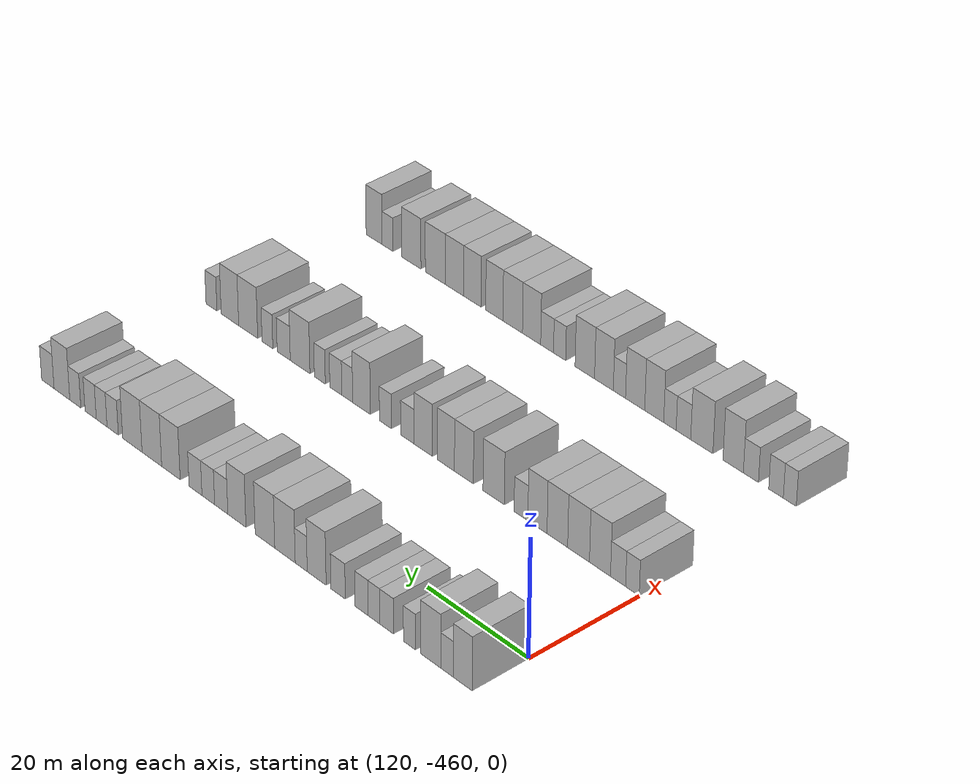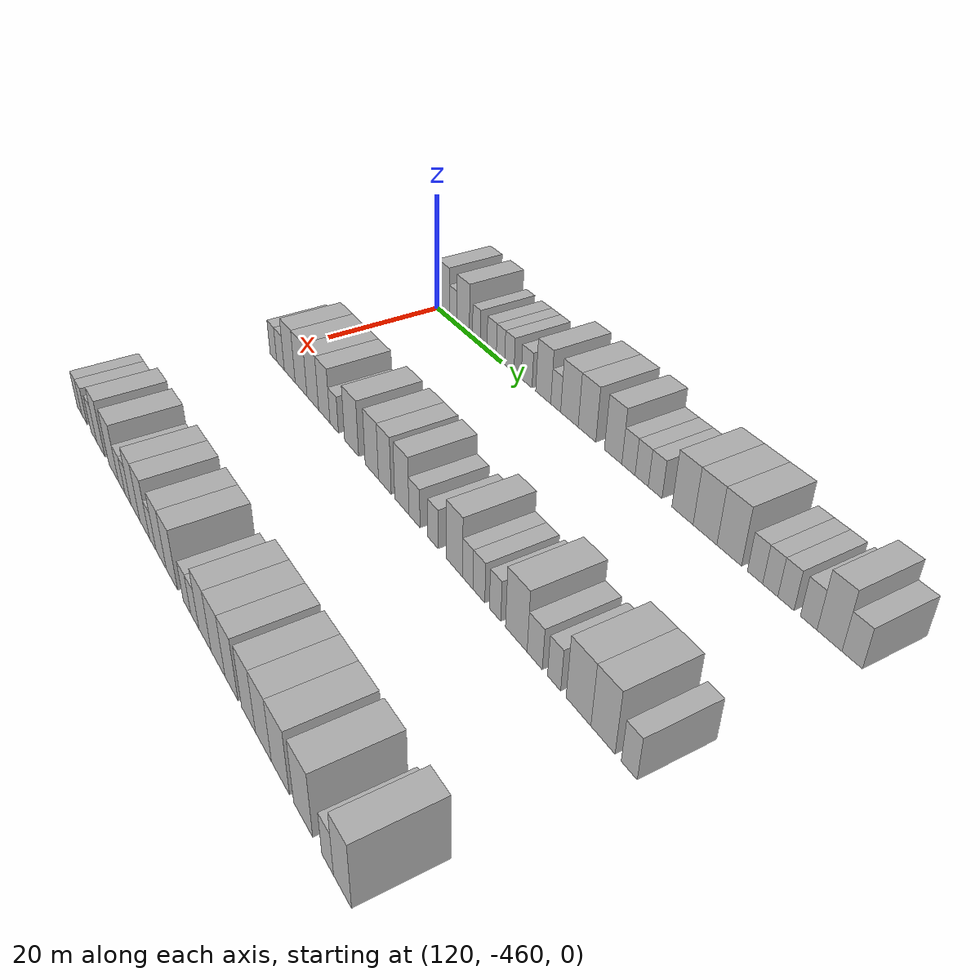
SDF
<sdf version="1.6">
 <world name="default">
  <model name="building_679">
   <static>1</static>
   <pose>115.0000 -458.1440 0 0.000000 0.000000 0.000000</pose>
   <link name="link">
    <pose>0 0 4.50 0 0 0</pose>
    <collision name="collision"><geometry><box><size>10.0000 3.7120 9.0000</size></box></geometry></collision>
    <visual name="visual">
     <cast_shadows>0</cast_shadows>
     <geometry><box><size>10.0000 3.7120 9.0000</size></box></geometry>
     <material>
      <script>
       <uri>model://HANNAS_wall/materials/scripts</uri>
       <uri>model://HANNAS_wall/materials/textures</uri>
       <name>vrc/HANNAS_wall</name>
      </script>
     </material>
    </visual>
   </link>
  </model>
  <model name="building_680">
   <static>1</static>
   <pose>115.0000 -455.0526 0 0.000000 0.000000 0.000000</pose>
   <link name="link">
    <pose>0 0 3.00 0 0 0</pose>
    <collision name="collision"><geometry><box><size>10.0000 2.4708 6.0000</size></box></geometry></collision>
    <visual name="visual">
     <cast_shadows>0</cast_shadows>
     <geometry><box><size>10.0000 2.4708 6.0000</size></box></geometry>
     <material>
      <script>
       <uri>model://HANNAS_wall/materials/scripts</uri>
       <uri>model://HANNAS_wall/materials/textures</uri>
       <name>vrc/HANNAS_wall</name>
      </script>
     </material>
    </visual>
   </link>
  </model>
  <model name="building_681">
   <static>1</static>
   <pose>115.0000 -451.8172 0 0.000000 0.000000 0.000000</pose>
   <link name="link">
    <pose>0 0 4.50 0 0 0</pose>
    <collision name="collision"><geometry><box><size>10.0000 3.9998 9.0000</size></box></geometry></collision>
    <visual name="visual">
     <cast_shadows>0</cast_shadows>
     <geometry><box><size>10.0000 3.9998 9.0000</size></box></geometry>
     <material>
      <script>
       <uri>model://HANNAS_wall/materials/scripts</uri>
       <uri>model://HANNAS_wall/materials/textures</uri>
       <name>vrc/HANNAS_wall</name>
      </script>
     </material>
    </visual>
   </link>
  </model>
  <model name="building_682">
   <static>1</static>
   <pose>115.0000 -447.6038 0 0.000000 0.000000 0.000000</pose>
   <link name="link">
    <pose>0 0 3.00 0 0 0</pose>
    <collision name="collision"><geometry><box><size>10.0000 2.4270 6.0000</size></box></geometry></collision>
    <visual name="visual">
     <cast_shadows>0</cast_shadows>
     <geometry><box><size>10.0000 2.4270 6.0000</size></box></geometry>
     <material>
      <script>
       <uri>model://HANNAS_wall/materials/scripts</uri>
       <uri>model://HANNAS_wall/materials/textures</uri>
       <name>vrc/HANNAS_wall</name>
      </script>
     </material>
    </visual>
   </link>
  </model>
  <model name="building_683">
   <static>1</static>
   <pose>115.0000 -443.0087 0 0.000000 0.000000 0.000000</pose>
   <link name="link">
    <pose>0 0 3.00 0 0 0</pose>
    <collision name="collision"><geometry><box><size>10.0000 2.7632 6.0000</size></box></geometry></collision>
    <visual name="visual">
     <cast_shadows>0</cast_shadows>
     <geometry><box><size>10.0000 2.7632 6.0000</size></box></geometry>
     <material>
      <script>
       <uri>model://HANNAS_wall/materials/scripts</uri>
       <uri>model://HANNAS_wall/materials/textures</uri>
       <name>vrc/HANNAS_wall</name>
      </script>
     </material>
    </visual>
   </link>
  </model>
  <model name="building_684">
   <static>1</static>
   <pose>115.0000 -440.4186 0 0.000000 0.000000 0.000000</pose>
   <link name="link">
    <pose>0 0 3.00 0 0 0</pose>
    <collision name="collision"><geometry><box><size>10.0000 2.4170 6.0000</size></box></geometry></collision>
    <visual name="visual">
     <cast_shadows>0</cast_shadows>
     <geometry><box><size>10.0000 2.4170 6.0000</size></box></geometry>
     <material>
      <script>
       <uri>model://HANNAS_wall/materials/scripts</uri>
       <uri>model://HANNAS_wall/materials/textures</uri>
       <name>vrc/HANNAS_wall</name>
      </script>
     </material>
    </visual>
   </link>
  </model>
  <model name="building_685">
   <static>1</static>
   <pose>115.0000 -437.8681 0 0.000000 0.000000 0.000000</pose>
   <link name="link">
    <pose>0 0 3.00 0 0 0</pose>
    <collision name="collision"><geometry><box><size>10.0000 2.6839 6.0000</size></box></geometry></collision>
    <visual name="visual">
     <cast_shadows>0</cast_shadows>
     <geometry><box><size>10.0000 2.6839 6.0000</size></box></geometry>
     <material>
      <script>
       <uri>model://HANNAS_wall/materials/scripts</uri>
       <uri>model://HANNAS_wall/materials/textures</uri>
       <name>vrc/HANNAS_wall</name>
      </script>
     </material>
    </visual>
   </link>
  </model>
  <model name="building_686">
   <static>1</static>
   <pose>115.0000 -433.0387 0 0.000000 0.000000 0.000000</pose>
   <link name="link">
    <pose>0 0 3.00 0 0 0</pose>
    <collision name="collision"><geometry><box><size>10.0000 2.9748 6.0000</size></box></geometry></collision>
    <visual name="visual">
     <cast_shadows>0</cast_shadows>
     <geometry><box><size>10.0000 2.9748 6.0000</size></box></geometry>
     <material>
      <script>
       <uri>model://HANNAS_wall/materials/scripts</uri>
       <uri>model://HANNAS_wall/materials/textures</uri>
       <name>vrc/HANNAS_wall</name>
      </script>
     </material>
    </visual>
   </link>
  </model>
  <model name="building_687">
   <static>1</static>
   <pose>115.0000 -428.5683 0 0.000000 0.000000 0.000000</pose>
   <link name="link">
    <pose>0 0 4.50 0 0 0</pose>
    <collision name="collision"><geometry><box><size>10.0000 3.9662 9.0000</size></box></geometry></collision>
    <visual name="visual">
     <cast_shadows>0</cast_shadows>
     <geometry><box><size>10.0000 3.9662 9.0000</size></box></geometry>
     <material>
      <script>
       <uri>model://HANNAS_wall/materials/scripts</uri>
       <uri>model://HANNAS_wall/materials/textures</uri>
       <name>vrc/HANNAS_wall</name>
      </script>
     </material>
    </visual>
   </link>
  </model>
  <model name="building_688">
   <static>1</static>
   <pose>115.0000 -425.3193 0 0.000000 0.000000 0.000000</pose>
   <link name="link">
    <pose>0 0 3.00 0 0 0</pose>
    <collision name="collision"><geometry><box><size>10.0000 2.5319 6.0000</size></box></geometry></collision>
    <visual name="visual">
     <cast_shadows>0</cast_shadows>
     <geometry><box><size>10.0000 2.5319 6.0000</size></box></geometry>
     <material>
      <script>
       <uri>model://HANNAS_wall/materials/scripts</uri>
       <uri>model://HANNAS_wall/materials/textures</uri>
       <name>vrc/HANNAS_wall</name>
      </script>
     </material>
    </visual>
   </link>
  </model>
  <model name="building_689">
   <static>1</static>
   <pose>115.0000 -421.8759 0 0.000000 0.000000 0.000000</pose>
   <link name="link">
    <pose>0 0 4.50 0 0 0</pose>
    <collision name="collision"><geometry><box><size>10.0000 4.3549 9.0000</size></box></geometry></collision>
    <visual name="visual">
     <cast_shadows>0</cast_shadows>
     <geometry><box><size>10.0000 4.3549 9.0000</size></box></geometry>
     <material>
      <script>
       <uri>model://HANNAS_wall/materials/scripts</uri>
       <uri>model://HANNAS_wall/materials/textures</uri>
       <name>vrc/HANNAS_wall</name>
      </script>
     </material>
    </visual>
   </link>
  </model>
  <model name="building_690">
   <static>1</static>
   <pose>115.0000 -417.5900 0 0.000000 0.000000 0.000000</pose>
   <link name="link">
    <pose>0 0 4.50 0 0 0</pose>
    <collision name="collision"><geometry><box><size>10.0000 4.2167 9.0000</size></box></geometry></collision>
    <visual name="visual">
     <cast_shadows>0</cast_shadows>
     <geometry><box><size>10.0000 4.2167 9.0000</size></box></geometry>
     <material>
      <script>
       <uri>model://HANNAS_wall/materials/scripts</uri>
       <uri>model://HANNAS_wall/materials/textures</uri>
       <name>vrc/HANNAS_wall</name>
      </script>
     </material>
    </visual>
   </link>
  </model>
  <model name="building_691">
   <static>1</static>
   <pose>115.0000 -411.5109 0 0.000000 0.000000 0.000000</pose>
   <link name="link">
    <pose>0 0 4.50 0 0 0</pose>
    <collision name="collision"><geometry><box><size>10.0000 3.9416 9.0000</size></box></geometry></collision>
    <visual name="visual">
     <cast_shadows>0</cast_shadows>
     <geometry><box><size>10.0000 3.9416 9.0000</size></box></geometry>
     <material>
      <script>
       <uri>model://HANNAS_wall/materials/scripts</uri>
       <uri>model://HANNAS_wall/materials/textures</uri>
       <name>vrc/HANNAS_wall</name>
      </script>
     </material>
    </visual>
   </link>
  </model>
  <model name="building_692">
   <static>1</static>
   <pose>115.0000 -408.0902 0 0.000000 0.000000 0.000000</pose>
   <link name="link">
    <pose>0 0 3.00 0 0 0</pose>
    <collision name="collision"><geometry><box><size>10.0000 2.8999 6.0000</size></box></geometry></collision>
    <visual name="visual">
     <cast_shadows>0</cast_shadows>
     <geometry><box><size>10.0000 2.8999 6.0000</size></box></geometry>
     <material>
      <script>
       <uri>model://HANNAS_wall/materials/scripts</uri>
       <uri>model://HANNAS_wall/materials/textures</uri>
       <name>vrc/HANNAS_wall</name>
      </script>
     </material>
    </visual>
   </link>
  </model>
  <model name="building_693">
   <static>1</static>
   <pose>115.0000 -405.2348 0 0.000000 0.000000 0.000000</pose>
   <link name="link">
    <pose>0 0 3.00 0 0 0</pose>
    <collision name="collision"><geometry><box><size>10.0000 2.8108 6.0000</size></box></geometry></collision>
    <visual name="visual">
     <cast_shadows>0</cast_shadows>
     <geometry><box><size>10.0000 2.8108 6.0000</size></box></geometry>
     <material>
      <script>
       <uri>model://HANNAS_wall/materials/scripts</uri>
       <uri>model://HANNAS_wall/materials/textures</uri>
       <name>vrc/HANNAS_wall</name>
      </script>
     </material>
    </visual>
   </link>
  </model>
  <model name="building_694">
   <static>1</static>
   <pose>115.0000 -402.4011 0 0.000000 0.000000 0.000000</pose>
   <link name="link">
    <pose>0 0 3.00 0 0 0</pose>
    <collision name="collision"><geometry><box><size>10.0000 2.8566 6.0000</size></box></geometry></collision>
    <visual name="visual">
     <cast_shadows>0</cast_shadows>
     <geometry><box><size>10.0000 2.8566 6.0000</size></box></geometry>
     <material>
      <script>
       <uri>model://HANNAS_wall/materials/scripts</uri>
       <uri>model://HANNAS_wall/materials/textures</uri>
       <name>vrc/HANNAS_wall</name>
      </script>
     </material>
    </visual>
   </link>
  </model>
  <model name="building_695">
   <static>1</static>
   <pose>115.0000 -396.8920 0 0.000000 0.000000 0.000000</pose>
   <link name="link">
    <pose>0 0 4.50 0 0 0</pose>
    <collision name="collision"><geometry><box><size>10.0000 4.1617 9.0000</size></box></geometry></collision>
    <visual name="visual">
     <cast_shadows>0</cast_shadows>
     <geometry><box><size>10.0000 4.1617 9.0000</size></box></geometry>
     <material>
      <script>
       <uri>model://HANNAS_wall/materials/scripts</uri>
       <uri>model://HANNAS_wall/materials/textures</uri>
       <name>vrc/HANNAS_wall</name>
      </script>
     </material>
    </visual>
   </link>
  </model>
  <model name="building_696">
   <static>1</static>
   <pose>115.0000 -392.5746 0 0.000000 0.000000 0.000000</pose>
   <link name="link">
    <pose>0 0 4.50 0 0 0</pose>
    <collision name="collision"><geometry><box><size>10.0000 4.4730 9.0000</size></box></geometry></collision>
    <visual name="visual">
     <cast_shadows>0</cast_shadows>
     <geometry><box><size>10.0000 4.4730 9.0000</size></box></geometry>
     <material>
      <script>
       <uri>model://HANNAS_wall/materials/scripts</uri>
       <uri>model://HANNAS_wall/materials/textures</uri>
       <name>vrc/HANNAS_wall</name>
      </script>
     </material>
    </visual>
   </link>
  </model>
  <model name="building_697">
   <static>1</static>
   <pose>115.0000 -388.1127 0 0.000000 0.000000 0.000000</pose>
   <link name="link">
    <pose>0 0 4.50 0 0 0</pose>
    <collision name="collision"><geometry><box><size>10.0000 4.4509 9.0000</size></box></geometry></collision>
    <visual name="visual">
     <cast_shadows>0</cast_shadows>
     <geometry><box><size>10.0000 4.4509 9.0000</size></box></geometry>
     <material>
      <script>
       <uri>model://HANNAS_wall/materials/scripts</uri>
       <uri>model://HANNAS_wall/materials/textures</uri>
       <name>vrc/HANNAS_wall</name>
      </script>
     </material>
    </visual>
   </link>
  </model>
  <model name="building_698">
   <static>1</static>
   <pose>115.0000 -383.5789 0 0.000000 0.000000 0.000000</pose>
   <link name="link">
    <pose>0 0 3.00 0 0 0</pose>
    <collision name="collision"><geometry><box><size>10.0000 2.6168 6.0000</size></box></geometry></collision>
    <visual name="visual">
     <cast_shadows>0</cast_shadows>
     <geometry><box><size>10.0000 2.6168 6.0000</size></box></geometry>
     <material>
      <script>
       <uri>model://HANNAS_wall/materials/scripts</uri>
       <uri>model://HANNAS_wall/materials/textures</uri>
       <name>vrc/HANNAS_wall</name>
      </script>
     </material>
    </visual>
   </link>
  </model>
  <model name="building_699">
   <static>1</static>
   <pose>115.0000 -381.0117 0 0.000000 0.000000 0.000000</pose>
   <link name="link">
    <pose>0 0 3.00 0 0 0</pose>
    <collision name="collision"><geometry><box><size>10.0000 2.5176 6.0000</size></box></geometry></collision>
    <visual name="visual">
     <cast_shadows>0</cast_shadows>
     <geometry><box><size>10.0000 2.5176 6.0000</size></box></geometry>
     <material>
      <script>
       <uri>model://HANNAS_wall/materials/scripts</uri>
       <uri>model://HANNAS_wall/materials/textures</uri>
       <name>vrc/HANNAS_wall</name>
      </script>
     </material>
    </visual>
   </link>
  </model>
  <model name="building_700">
   <static>1</static>
   <pose>115.0000 -378.4424 0 0.000000 0.000000 0.000000</pose>
   <link name="link">
    <pose>0 0 3.00 0 0 0</pose>
    <collision name="collision"><geometry><box><size>10.0000 2.6211 6.0000</size></box></geometry></collision>
    <visual name="visual">
     <cast_shadows>0</cast_shadows>
     <geometry><box><size>10.0000 2.6211 6.0000</size></box></geometry>
     <material>
      <script>
       <uri>model://HANNAS_wall/materials/scripts</uri>
       <uri>model://HANNAS_wall/materials/textures</uri>
       <name>vrc/HANNAS_wall</name>
      </script>
     </material>
    </visual>
   </link>
  </model>
  <model name="building_701">
   <static>1</static>
   <pose>115.0000 -374.8305 0 0.000000 0.000000 0.000000</pose>
   <link name="link">
    <pose>0 0 3.00 0 0 0</pose>
    <collision name="collision"><geometry><box><size>10.0000 2.6027 6.0000</size></box></geometry></collision>
    <visual name="visual">
     <cast_shadows>0</cast_shadows>
     <geometry><box><size>10.0000 2.6027 6.0000</size></box></geometry>
     <material>
      <script>
       <uri>model://HANNAS_wall/materials/scripts</uri>
       <uri>model://HANNAS_wall/materials/textures</uri>
       <name>vrc/HANNAS_wall</name>
      </script>
     </material>
    </visual>
   </link>
  </model>
  <model name="building_702">
   <static>1</static>
   <pose>115.0000 -371.6557 0 0.000000 0.000000 0.000000</pose>
   <link name="link">
    <pose>0 0 4.50 0 0 0</pose>
    <collision name="collision"><geometry><box><size>10.0000 3.7470 9.0000</size></box></geometry></collision>
    <visual name="visual">
     <cast_shadows>0</cast_shadows>
     <geometry><box><size>10.0000 3.7470 9.0000</size></box></geometry>
     <material>
      <script>
       <uri>model://HANNAS_wall/materials/scripts</uri>
       <uri>model://HANNAS_wall/materials/textures</uri>
       <name>vrc/HANNAS_wall</name>
      </script>
     </material>
    </visual>
   </link>
  </model>
  <model name="building_703">
   <static>1</static>
   <pose>115.0000 -368.2996 0 0.000000 0.000000 0.000000</pose>
   <link name="link">
    <pose>0 0 3.00 0 0 0</pose>
    <collision name="collision"><geometry><box><size>10.0000 2.9650 6.0000</size></box></geometry></collision>
    <visual name="visual">
     <cast_shadows>0</cast_shadows>
     <geometry><box><size>10.0000 2.9650 6.0000</size></box></geometry>
     <material>
      <script>
       <uri>model://HANNAS_wall/materials/scripts</uri>
       <uri>model://HANNAS_wall/materials/textures</uri>
       <name>vrc/HANNAS_wall</name>
      </script>
     </material>
    </visual>
   </link>
  </model>
  <model name="building_897">
   <static>1</static>
   <pose>145.0000 -458.6773 0 0.000000 0.000000 0.000000</pose>
   <link name="link">
    <pose>0 0 3.00 0 0 0</pose>
    <collision name="collision"><geometry><box><size>10.0000 2.6454 6.0000</size></box></geometry></collision>
    <visual name="visual">
     <cast_shadows>0</cast_shadows>
     <geometry><box><size>10.0000 2.6454 6.0000</size></box></geometry>
     <material>
      <script>
       <uri>model://HANNAS_wall/materials/scripts</uri>
       <uri>model://HANNAS_wall/materials/textures</uri>
       <name>vrc/HANNAS_wall</name>
      </script>
     </material>
    </visual>
   </link>
  </model>
  <model name="building_898">
   <static>1</static>
   <pose>145.0000 -455.8825 0 0.000000 0.000000 0.000000</pose>
   <link name="link">
    <pose>0 0 3.00 0 0 0</pose>
    <collision name="collision"><geometry><box><size>10.0000 2.9441 6.0000</size></box></geometry></collision>
    <visual name="visual">
     <cast_shadows>0</cast_shadows>
     <geometry><box><size>10.0000 2.9441 6.0000</size></box></geometry>
     <material>
      <script>
       <uri>model://HANNAS_wall/materials/scripts</uri>
       <uri>model://HANNAS_wall/materials/textures</uri>
       <name>vrc/HANNAS_wall</name>
      </script>
     </material>
    </visual>
   </link>
  </model>
  <model name="building_899">
   <static>1</static>
   <pose>145.0000 -452.3406 0 0.000000 0.000000 0.000000</pose>
   <link name="link">
    <pose>0 0 4.50 0 0 0</pose>
    <collision name="collision"><geometry><box><size>10.0000 4.1396 9.0000</size></box></geometry></collision>
    <visual name="visual">
     <cast_shadows>0</cast_shadows>
     <geometry><box><size>10.0000 4.1396 9.0000</size></box></geometry>
     <material>
      <script>
       <uri>model://HANNAS_wall/materials/scripts</uri>
       <uri>model://HANNAS_wall/materials/textures</uri>
       <name>vrc/HANNAS_wall</name>
      </script>
     </material>
    </visual>
   </link>
  </model>
  <model name="building_900">
   <static>1</static>
   <pose>145.0000 -448.1002 0 0.000000 0.000000 0.000000</pose>
   <link name="link">
    <pose>0 0 4.50 0 0 0</pose>
    <collision name="collision"><geometry><box><size>10.0000 4.3412 9.0000</size></box></geometry></collision>
    <visual name="visual">
     <cast_shadows>0</cast_shadows>
     <geometry><box><size>10.0000 4.3412 9.0000</size></box></geometry>
     <material>
      <script>
       <uri>model://HANNAS_wall/materials/scripts</uri>
       <uri>model://HANNAS_wall/materials/textures</uri>
       <name>vrc/HANNAS_wall</name>
      </script>
     </material>
    </visual>
   </link>
  </model>
  <model name="building_901">
   <static>1</static>
   <pose>145.0000 -443.8634 0 0.000000 0.000000 0.000000</pose>
   <link name="link">
    <pose>0 0 4.50 0 0 0</pose>
    <collision name="collision"><geometry><box><size>10.0000 4.1324 9.0000</size></box></geometry></collision>
    <visual name="visual">
     <cast_shadows>0</cast_shadows>
     <geometry><box><size>10.0000 4.1324 9.0000</size></box></geometry>
     <material>
      <script>
       <uri>model://HANNAS_wall/materials/scripts</uri>
       <uri>model://HANNAS_wall/materials/textures</uri>
       <name>vrc/HANNAS_wall</name>
      </script>
     </material>
    </visual>
   </link>
  </model>
  <model name="building_902">
   <static>1</static>
   <pose>145.0000 -439.8578 0 0.000000 0.000000 0.000000</pose>
   <link name="link">
    <pose>0 0 4.50 0 0 0</pose>
    <collision name="collision"><geometry><box><size>10.0000 3.8790 9.0000</size></box></geometry></collision>
    <visual name="visual">
     <cast_shadows>0</cast_shadows>
     <geometry><box><size>10.0000 3.8790 9.0000</size></box></geometry>
     <material>
      <script>
       <uri>model://HANNAS_wall/materials/scripts</uri>
       <uri>model://HANNAS_wall/materials/textures</uri>
       <name>vrc/HANNAS_wall</name>
      </script>
     </material>
    </visual>
   </link>
  </model>
  <model name="building_903">
   <static>1</static>
   <pose>145.0000 -436.5166 0 0.000000 0.000000 0.000000</pose>
   <link name="link">
    <pose>0 0 3.00 0 0 0</pose>
    <collision name="collision"><geometry><box><size>10.0000 2.8032 6.0000</size></box></geometry></collision>
    <visual name="visual">
     <cast_shadows>0</cast_shadows>
     <geometry><box><size>10.0000 2.8032 6.0000</size></box></geometry>
     <material>
      <script>
       <uri>model://HANNAS_wall/materials/scripts</uri>
       <uri>model://HANNAS_wall/materials/textures</uri>
       <name>vrc/HANNAS_wall</name>
      </script>
     </material>
    </visual>
   </link>
  </model>
  <model name="building_904">
   <static>1</static>
   <pose>145.0000 -430.9033 0 0.000000 0.000000 0.000000</pose>
   <link name="link">
    <pose>0 0 4.50 0 0 0</pose>
    <collision name="collision"><geometry><box><size>10.0000 4.4235 9.0000</size></box></geometry></collision>
    <visual name="visual">
     <cast_shadows>0</cast_shadows>
     <geometry><box><size>10.0000 4.4235 9.0000</size></box></geometry>
     <material>
      <script>
       <uri>model://HANNAS_wall/materials/scripts</uri>
       <uri>model://HANNAS_wall/materials/textures</uri>
       <name>vrc/HANNAS_wall</name>
      </script>
     </material>
    </visual>
   </link>
  </model>
  <model name="building_905">
   <static>1</static>
   <pose>145.0000 -424.7099 0 0.000000 0.000000 0.000000</pose>
   <link name="link">
    <pose>0 0 4.50 0 0 0</pose>
    <collision name="collision"><geometry><box><size>10.0000 3.9633 9.0000</size></box></geometry></collision>
    <visual name="visual">
     <cast_shadows>0</cast_shadows>
     <geometry><box><size>10.0000 3.9633 9.0000</size></box></geometry>
     <material>
      <script>
       <uri>model://HANNAS_wall/materials/scripts</uri>
       <uri>model://HANNAS_wall/materials/textures</uri>
       <name>vrc/HANNAS_wall</name>
      </script>
     </material>
    </visual>
   </link>
  </model>
  <model name="building_906">
   <static>1</static>
   <pose>145.0000 -420.9056 0 0.000000 0.000000 0.000000</pose>
   <link name="link">
    <pose>0 0 4.50 0 0 0</pose>
    <collision name="collision"><geometry><box><size>10.0000 3.6452 9.0000</size></box></geometry></collision>
    <visual name="visual">
     <cast_shadows>0</cast_shadows>
     <geometry><box><size>10.0000 3.6452 9.0000</size></box></geometry>
     <material>
      <script>
       <uri>model://HANNAS_wall/materials/scripts</uri>
       <uri>model://HANNAS_wall/materials/textures</uri>
       <name>vrc/HANNAS_wall</name>
      </script>
     </material>
    </visual>
   </link>
  </model>
  <model name="building_907">
   <static>1</static>
   <pose>145.0000 -416.1419 0 0.000000 0.000000 0.000000</pose>
   <link name="link">
    <pose>0 0 4.50 0 0 0</pose>
    <collision name="collision"><geometry><box><size>10.0000 3.8822 9.0000</size></box></geometry></collision>
    <visual name="visual">
     <cast_shadows>0</cast_shadows>
     <geometry><box><size>10.0000 3.8822 9.0000</size></box></geometry>
     <material>
      <script>
       <uri>model://HANNAS_wall/materials/scripts</uri>
       <uri>model://HANNAS_wall/materials/textures</uri>
       <name>vrc/HANNAS_wall</name>
      </script>
     </material>
    </visual>
   </link>
  </model>
  <model name="building_908">
   <static>1</static>
   <pose>145.0000 -412.7316 0 0.000000 0.000000 0.000000</pose>
   <link name="link">
    <pose>0 0 3.00 0 0 0</pose>
    <collision name="collision"><geometry><box><size>10.0000 2.9385 6.0000</size></box></geometry></collision>
    <visual name="visual">
     <cast_shadows>0</cast_shadows>
     <geometry><box><size>10.0000 2.9385 6.0000</size></box></geometry>
     <material>
      <script>
       <uri>model://HANNAS_wall/materials/scripts</uri>
       <uri>model://HANNAS_wall/materials/textures</uri>
       <name>vrc/HANNAS_wall</name>
      </script>
     </material>
    </visual>
   </link>
  </model>
  <model name="building_909">
   <static>1</static>
   <pose>145.0000 -407.9626 0 0.000000 0.000000 0.000000</pose>
   <link name="link">
    <pose>0 0 3.00 0 0 0</pose>
    <collision name="collision"><geometry><box><size>10.0000 2.5996 6.0000</size></box></geometry></collision>
    <visual name="visual">
     <cast_shadows>0</cast_shadows>
     <geometry><box><size>10.0000 2.5996 6.0000</size></box></geometry>
     <material>
      <script>
       <uri>model://HANNAS_wall/materials/scripts</uri>
       <uri>model://HANNAS_wall/materials/textures</uri>
       <name>vrc/HANNAS_wall</name>
      </script>
     </material>
    </visual>
   </link>
  </model>
  <model name="building_910">
   <static>1</static>
   <pose>145.0000 -402.7244 0 0.000000 0.000000 0.000000</pose>
   <link name="link">
    <pose>0 0 4.50 0 0 0</pose>
    <collision name="collision"><geometry><box><size>10.0000 3.8767 9.0000</size></box></geometry></collision>
    <visual name="visual">
     <cast_shadows>0</cast_shadows>
     <geometry><box><size>10.0000 3.8767 9.0000</size></box></geometry>
     <material>
      <script>
       <uri>model://HANNAS_wall/materials/scripts</uri>
       <uri>model://HANNAS_wall/materials/textures</uri>
       <name>vrc/HANNAS_wall</name>
      </script>
     </material>
    </visual>
   </link>
  </model>
  <model name="building_911">
   <static>1</static>
   <pose>145.0000 -399.5802 0 0.000000 0.000000 0.000000</pose>
   <link name="link">
    <pose>0 0 3.00 0 0 0</pose>
    <collision name="collision"><geometry><box><size>10.0000 2.4117 6.0000</size></box></geometry></collision>
    <visual name="visual">
     <cast_shadows>0</cast_shadows>
     <geometry><box><size>10.0000 2.4117 6.0000</size></box></geometry>
     <material>
      <script>
       <uri>model://HANNAS_wall/materials/scripts</uri>
       <uri>model://HANNAS_wall/materials/textures</uri>
       <name>vrc/HANNAS_wall</name>
      </script>
     </material>
    </visual>
   </link>
  </model>
  <model name="building_912">
   <static>1</static>
   <pose>145.0000 -397.0413 0 0.000000 0.000000 0.000000</pose>
   <link name="link">
    <pose>0 0 3.00 0 0 0</pose>
    <collision name="collision"><geometry><box><size>10.0000 2.6661 6.0000</size></box></geometry></collision>
    <visual name="visual">
     <cast_shadows>0</cast_shadows>
     <geometry><box><size>10.0000 2.6661 6.0000</size></box></geometry>
     <material>
      <script>
       <uri>model://HANNAS_wall/materials/scripts</uri>
       <uri>model://HANNAS_wall/materials/textures</uri>
       <name>vrc/HANNAS_wall</name>
      </script>
     </material>
    </visual>
   </link>
  </model>
  <model name="building_913">
   <static>1</static>
   <pose>145.0000 -393.4791 0 0.000000 0.000000 0.000000</pose>
   <link name="link">
    <pose>0 0 3.00 0 0 0</pose>
    <collision name="collision"><geometry><box><size>10.0000 2.4581 6.0000</size></box></geometry></collision>
    <visual name="visual">
     <cast_shadows>0</cast_shadows>
     <geometry><box><size>10.0000 2.4581 6.0000</size></box></geometry>
     <material>
      <script>
       <uri>model://HANNAS_wall/materials/scripts</uri>
       <uri>model://HANNAS_wall/materials/textures</uri>
       <name>vrc/HANNAS_wall</name>
      </script>
     </material>
    </visual>
   </link>
  </model>
  <model name="building_914">
   <static>1</static>
   <pose>145.0000 -389.0244 0 0.000000 0.000000 0.000000</pose>
   <link name="link">
    <pose>0 0 4.50 0 0 0</pose>
    <collision name="collision"><geometry><box><size>10.0000 4.4514 9.0000</size></box></geometry></collision>
    <visual name="visual">
     <cast_shadows>0</cast_shadows>
     <geometry><box><size>10.0000 4.4514 9.0000</size></box></geometry>
     <material>
      <script>
       <uri>model://HANNAS_wall/materials/scripts</uri>
       <uri>model://HANNAS_wall/materials/textures</uri>
       <name>vrc/HANNAS_wall</name>
      </script>
     </material>
    </visual>
   </link>
  </model>
  <model name="building_915">
   <static>1</static>
   <pose>145.0000 -385.3014 0 0.000000 0.000000 0.000000</pose>
   <link name="link">
    <pose>0 0 3.00 0 0 0</pose>
    <collision name="collision"><geometry><box><size>10.0000 2.9944 6.0000</size></box></geometry></collision>
    <visual name="visual">
     <cast_shadows>0</cast_shadows>
     <geometry><box><size>10.0000 2.9944 6.0000</size></box></geometry>
     <material>
      <script>
       <uri>model://HANNAS_wall/materials/scripts</uri>
       <uri>model://HANNAS_wall/materials/textures</uri>
       <name>vrc/HANNAS_wall</name>
      </script>
     </material>
    </visual>
   </link>
  </model>
  <model name="building_916">
   <static>1</static>
   <pose>145.0000 -381.5657 0 0.000000 0.000000 0.000000</pose>
   <link name="link">
    <pose>0 0 3.00 0 0 0</pose>
    <collision name="collision"><geometry><box><size>10.0000 2.4771 6.0000</size></box></geometry></collision>
    <visual name="visual">
     <cast_shadows>0</cast_shadows>
     <geometry><box><size>10.0000 2.4771 6.0000</size></box></geometry>
     <material>
      <script>
       <uri>model://HANNAS_wall/materials/scripts</uri>
       <uri>model://HANNAS_wall/materials/textures</uri>
       <name>vrc/HANNAS_wall</name>
      </script>
     </material>
    </visual>
   </link>
  </model>
  <model name="building_917">
   <static>1</static>
   <pose>145.0000 -377.1180 0 0.000000 0.000000 0.000000</pose>
   <link name="link">
    <pose>0 0 4.50 0 0 0</pose>
    <collision name="collision"><geometry><box><size>10.0000 4.4183 9.0000</size></box></geometry></collision>
    <visual name="visual">
     <cast_shadows>0</cast_shadows>
     <geometry><box><size>10.0000 4.4183 9.0000</size></box></geometry>
     <material>
      <script>
       <uri>model://HANNAS_wall/materials/scripts</uri>
       <uri>model://HANNAS_wall/materials/textures</uri>
       <name>vrc/HANNAS_wall</name>
      </script>
     </material>
    </visual>
   </link>
  </model>
  <model name="building_918">
   <static>1</static>
   <pose>145.0000 -372.8597 0 0.000000 0.000000 0.000000</pose>
   <link name="link">
    <pose>0 0 4.50 0 0 0</pose>
    <collision name="collision"><geometry><box><size>10.0000 4.0983 9.0000</size></box></geometry></collision>
    <visual name="visual">
     <cast_shadows>0</cast_shadows>
     <geometry><box><size>10.0000 4.0983 9.0000</size></box></geometry>
     <material>
      <script>
       <uri>model://HANNAS_wall/materials/scripts</uri>
       <uri>model://HANNAS_wall/materials/textures</uri>
       <name>vrc/HANNAS_wall</name>
      </script>
     </material>
    </visual>
   </link>
  </model>
  <model name="building_919">
   <static>1</static>
   <pose>145.0000 -368.5227 0 0.000000 0.000000 0.000000</pose>
   <link name="link">
    <pose>0 0 3.00 0 0 0</pose>
    <collision name="collision"><geometry><box><size>10.0000 2.5757 6.0000</size></box></geometry></collision>
    <visual name="visual">
     <cast_shadows>0</cast_shadows>
     <geometry><box><size>10.0000 2.5757 6.0000</size></box></geometry>
     <material>
      <script>
       <uri>model://HANNAS_wall/materials/scripts</uri>
       <uri>model://HANNAS_wall/materials/textures</uri>
       <name>vrc/HANNAS_wall</name>
      </script>
     </material>
    </visual>
   </link>
  </model>
  <model name="building_1127">
   <static>1</static>
   <pose>175.0000 -458.7492 0 0.000000 0.000000 0.000000</pose>
   <link name="link">
    <pose>0 0 3.00 0 0 0</pose>
    <collision name="collision"><geometry><box><size>10.0000 2.5017 6.0000</size></box></geometry></collision>
    <visual name="visual">
     <cast_shadows>0</cast_shadows>
     <geometry><box><size>10.0000 2.5017 6.0000</size></box></geometry>
     <material>
      <script>
       <uri>model://HANNAS_wall/materials/scripts</uri>
       <uri>model://HANNAS_wall/materials/textures</uri>
       <name>vrc/HANNAS_wall</name>
      </script>
     </material>
    </visual>
   </link>
  </model>
  <model name="building_1128">
   <static>1</static>
   <pose>175.0000 -456.0791 0 0.000000 0.000000 0.000000</pose>
   <link name="link">
    <pose>0 0 3.00 0 0 0</pose>
    <collision name="collision"><geometry><box><size>10.0000 2.8384 6.0000</size></box></geometry></collision>
    <visual name="visual">
     <cast_shadows>0</cast_shadows>
     <geometry><box><size>10.0000 2.8384 6.0000</size></box></geometry>
     <material>
      <script>
       <uri>model://HANNAS_wall/materials/scripts</uri>
       <uri>model://HANNAS_wall/materials/textures</uri>
       <name>vrc/HANNAS_wall</name>
      </script>
     </material>
    </visual>
   </link>
  </model>
  <model name="building_1129">
   <static>1</static>
   <pose>175.0000 -451.1783 0 0.000000 0.000000 0.000000</pose>
   <link name="link">
    <pose>0 0 3.00 0 0 0</pose>
    <collision name="collision"><geometry><box><size>10.0000 2.9633 6.0000</size></box></geometry></collision>
    <visual name="visual">
     <cast_shadows>0</cast_shadows>
     <geometry><box><size>10.0000 2.9633 6.0000</size></box></geometry>
     <material>
      <script>
       <uri>model://HANNAS_wall/materials/scripts</uri>
       <uri>model://HANNAS_wall/materials/textures</uri>
       <name>vrc/HANNAS_wall</name>
      </script>
     </material>
    </visual>
   </link>
  </model>
  <model name="building_1130">
   <static>1</static>
   <pose>175.0000 -447.6778 0 0.000000 0.000000 0.000000</pose>
   <link name="link">
    <pose>0 0 4.50 0 0 0</pose>
    <collision name="collision"><geometry><box><size>10.0000 4.0377 9.0000</size></box></geometry></collision>
    <visual name="visual">
     <cast_shadows>0</cast_shadows>
     <geometry><box><size>10.0000 4.0377 9.0000</size></box></geometry>
     <material>
      <script>
       <uri>model://HANNAS_wall/materials/scripts</uri>
       <uri>model://HANNAS_wall/materials/textures</uri>
       <name>vrc/HANNAS_wall</name>
      </script>
     </material>
    </visual>
   </link>
  </model>
  <model name="building_1131">
   <static>1</static>
   <pose>175.0000 -441.4262 0 0.000000 0.000000 0.000000</pose>
   <link name="link">
    <pose>0 0 4.50 0 0 0</pose>
    <collision name="collision"><geometry><box><size>10.0000 4.4655 9.0000</size></box></geometry></collision>
    <visual name="visual">
     <cast_shadows>0</cast_shadows>
     <geometry><box><size>10.0000 4.4655 9.0000</size></box></geometry>
     <material>
      <script>
       <uri>model://HANNAS_wall/materials/scripts</uri>
       <uri>model://HANNAS_wall/materials/textures</uri>
       <name>vrc/HANNAS_wall</name>
      </script>
     </material>
    </visual>
   </link>
  </model>
  <model name="building_1132">
   <static>1</static>
   <pose>175.0000 -437.7216 0 0.000000 0.000000 0.000000</pose>
   <link name="link">
    <pose>0 0 3.00 0 0 0</pose>
    <collision name="collision"><geometry><box><size>10.0000 2.9437 6.0000</size></box></geometry></collision>
    <visual name="visual">
     <cast_shadows>0</cast_shadows>
     <geometry><box><size>10.0000 2.9437 6.0000</size></box></geometry>
     <material>
      <script>
       <uri>model://HANNAS_wall/materials/scripts</uri>
       <uri>model://HANNAS_wall/materials/textures</uri>
       <name>vrc/HANNAS_wall</name>
      </script>
     </material>
    </visual>
   </link>
  </model>
  <model name="building_1133">
   <static>1</static>
   <pose>175.0000 -434.9835 0 0.000000 0.000000 0.000000</pose>
   <link name="link">
    <pose>0 0 3.00 0 0 0</pose>
    <collision name="collision"><geometry><box><size>10.0000 2.5327 6.0000</size></box></geometry></collision>
    <visual name="visual">
     <cast_shadows>0</cast_shadows>
     <geometry><box><size>10.0000 2.5327 6.0000</size></box></geometry>
     <material>
      <script>
       <uri>model://HANNAS_wall/materials/scripts</uri>
       <uri>model://HANNAS_wall/materials/textures</uri>
       <name>vrc/HANNAS_wall</name>
      </script>
     </material>
    </visual>
   </link>
  </model>
  <model name="building_1134">
   <static>1</static>
   <pose>175.0000 -431.7691 0 0.000000 0.000000 0.000000</pose>
   <link name="link">
    <pose>0 0 4.50 0 0 0</pose>
    <collision name="collision"><geometry><box><size>10.0000 3.8961 9.0000</size></box></geometry></collision>
    <visual name="visual">
     <cast_shadows>0</cast_shadows>
     <geometry><box><size>10.0000 3.8961 9.0000</size></box></geometry>
     <material>
      <script>
       <uri>model://HANNAS_wall/materials/scripts</uri>
       <uri>model://HANNAS_wall/materials/textures</uri>
       <name>vrc/HANNAS_wall</name>
      </script>
     </material>
    </visual>
   </link>
  </model>
  <model name="building_1135">
   <static>1</static>
   <pose>175.0000 -427.8384 0 0.000000 0.000000 0.000000</pose>
   <link name="link">
    <pose>0 0 4.50 0 0 0</pose>
    <collision name="collision"><geometry><box><size>10.0000 3.9652 9.0000</size></box></geometry></collision>
    <visual name="visual">
     <cast_shadows>0</cast_shadows>
     <geometry><box><size>10.0000 3.9652 9.0000</size></box></geometry>
     <material>
      <script>
       <uri>model://HANNAS_wall/materials/scripts</uri>
       <uri>model://HANNAS_wall/materials/textures</uri>
       <name>vrc/HANNAS_wall</name>
      </script>
     </material>
    </visual>
   </link>
  </model>
  <model name="building_1136">
   <static>1</static>
   <pose>175.0000 -424.5842 0 0.000000 0.000000 0.000000</pose>
   <link name="link">
    <pose>0 0 3.00 0 0 0</pose>
    <collision name="collision"><geometry><box><size>10.0000 2.5432 6.0000</size></box></geometry></collision>
    <visual name="visual">
     <cast_shadows>0</cast_shadows>
     <geometry><box><size>10.0000 2.5432 6.0000</size></box></geometry>
     <material>
      <script>
       <uri>model://HANNAS_wall/materials/scripts</uri>
       <uri>model://HANNAS_wall/materials/textures</uri>
       <name>vrc/HANNAS_wall</name>
      </script>
     </material>
    </visual>
   </link>
  </model>
  <model name="building_1137">
   <static>1</static>
   <pose>175.0000 -421.3475 0 0.000000 0.000000 0.000000</pose>
   <link name="link">
    <pose>0 0 4.50 0 0 0</pose>
    <collision name="collision"><geometry><box><size>10.0000 3.9301 9.0000</size></box></geometry></collision>
    <visual name="visual">
     <cast_shadows>0</cast_shadows>
     <geometry><box><size>10.0000 3.9301 9.0000</size></box></geometry>
     <material>
      <script>
       <uri>model://HANNAS_wall/materials/scripts</uri>
       <uri>model://HANNAS_wall/materials/textures</uri>
       <name>vrc/HANNAS_wall</name>
      </script>
     </material>
    </visual>
   </link>
  </model>
  <model name="building_1138">
   <static>1</static>
   <pose>175.0000 -417.3230 0 0.000000 0.000000 0.000000</pose>
   <link name="link">
    <pose>0 0 4.50 0 0 0</pose>
    <collision name="collision"><geometry><box><size>10.0000 4.1190 9.0000</size></box></geometry></collision>
    <visual name="visual">
     <cast_shadows>0</cast_shadows>
     <geometry><box><size>10.0000 4.1190 9.0000</size></box></geometry>
     <material>
      <script>
       <uri>model://HANNAS_wall/materials/scripts</uri>
       <uri>model://HANNAS_wall/materials/textures</uri>
       <name>vrc/HANNAS_wall</name>
      </script>
     </material>
    </visual>
   </link>
  </model>
  <model name="building_1139">
   <static>1</static>
   <pose>175.0000 -411.9642 0 0.000000 0.000000 0.000000</pose>
   <link name="link">
    <pose>0 0 3.00 0 0 0</pose>
    <collision name="collision"><geometry><box><size>10.0000 2.5985 6.0000</size></box></geometry></collision>
    <visual name="visual">
     <cast_shadows>0</cast_shadows>
     <geometry><box><size>10.0000 2.5985 6.0000</size></box></geometry>
     <material>
      <script>
       <uri>model://HANNAS_wall/materials/scripts</uri>
       <uri>model://HANNAS_wall/materials/textures</uri>
       <name>vrc/HANNAS_wall</name>
      </script>
     </material>
    </visual>
   </link>
  </model>
  <model name="building_1140">
   <static>1</static>
   <pose>175.0000 -409.2841 0 0.000000 0.000000 0.000000</pose>
   <link name="link">
    <pose>0 0 3.00 0 0 0</pose>
    <collision name="collision"><geometry><box><size>10.0000 2.7619 6.0000</size></box></geometry></collision>
    <visual name="visual">
     <cast_shadows>0</cast_shadows>
     <geometry><box><size>10.0000 2.7619 6.0000</size></box></geometry>
     <material>
      <script>
       <uri>model://HANNAS_wall/materials/scripts</uri>
       <uri>model://HANNAS_wall/materials/textures</uri>
       <name>vrc/HANNAS_wall</name>
      </script>
     </material>
    </visual>
   </link>
  </model>
  <model name="building_1141">
   <static>1</static>
   <pose>175.0000 -405.9303 0 0.000000 0.000000 0.000000</pose>
   <link name="link">
    <pose>0 0 4.50 0 0 0</pose>
    <collision name="collision"><geometry><box><size>10.0000 3.9456 9.0000</size></box></geometry></collision>
    <visual name="visual">
     <cast_shadows>0</cast_shadows>
     <geometry><box><size>10.0000 3.9456 9.0000</size></box></geometry>
     <material>
      <script>
       <uri>model://HANNAS_wall/materials/scripts</uri>
       <uri>model://HANNAS_wall/materials/textures</uri>
       <name>vrc/HANNAS_wall</name>
      </script>
     </material>
    </visual>
   </link>
  </model>
  <model name="building_1142">
   <static>1</static>
   <pose>175.0000 -401.8286 0 0.000000 0.000000 0.000000</pose>
   <link name="link">
    <pose>0 0 4.50 0 0 0</pose>
    <collision name="collision"><geometry><box><size>10.0000 4.2580 9.0000</size></box></geometry></collision>
    <visual name="visual">
     <cast_shadows>0</cast_shadows>
     <geometry><box><size>10.0000 4.2580 9.0000</size></box></geometry>
     <material>
      <script>
       <uri>model://HANNAS_wall/materials/scripts</uri>
       <uri>model://HANNAS_wall/materials/textures</uri>
       <name>vrc/HANNAS_wall</name>
      </script>
     </material>
    </visual>
   </link>
  </model>
  <model name="building_1143">
   <static>1</static>
   <pose>175.0000 -397.7962 0 0.000000 0.000000 0.000000</pose>
   <link name="link">
    <pose>0 0 4.50 0 0 0</pose>
    <collision name="collision"><geometry><box><size>10.0000 3.8068 9.0000</size></box></geometry></collision>
    <visual name="visual">
     <cast_shadows>0</cast_shadows>
     <geometry><box><size>10.0000 3.8068 9.0000</size></box></geometry>
     <material>
      <script>
       <uri>model://HANNAS_wall/materials/scripts</uri>
       <uri>model://HANNAS_wall/materials/textures</uri>
       <name>vrc/HANNAS_wall</name>
      </script>
     </material>
    </visual>
   </link>
  </model>
  <model name="building_1144">
   <static>1</static>
   <pose>175.0000 -392.9538 0 0.000000 0.000000 0.000000</pose>
   <link name="link">
    <pose>0 0 4.50 0 0 0</pose>
    <collision name="collision"><geometry><box><size>10.0000 3.8780 9.0000</size></box></geometry></collision>
    <visual name="visual">
     <cast_shadows>0</cast_shadows>
     <geometry><box><size>10.0000 3.8780 9.0000</size></box></geometry>
     <material>
      <script>
       <uri>model://HANNAS_wall/materials/scripts</uri>
       <uri>model://HANNAS_wall/materials/textures</uri>
       <name>vrc/HANNAS_wall</name>
      </script>
     </material>
    </visual>
   </link>
  </model>
  <model name="building_1145">
   <static>1</static>
   <pose>175.0000 -388.9258 0 0.000000 0.000000 0.000000</pose>
   <link name="link">
    <pose>0 0 4.50 0 0 0</pose>
    <collision name="collision"><geometry><box><size>10.0000 4.1780 9.0000</size></box></geometry></collision>
    <visual name="visual">
     <cast_shadows>0</cast_shadows>
     <geometry><box><size>10.0000 4.1780 9.0000</size></box></geometry>
     <material>
      <script>
       <uri>model://HANNAS_wall/materials/scripts</uri>
       <uri>model://HANNAS_wall/materials/textures</uri>
       <name>vrc/HANNAS_wall</name>
      </script>
     </material>
    </visual>
   </link>
  </model>
  <model name="building_1146">
   <static>1</static>
   <pose>175.0000 -384.5901 0 0.000000 0.000000 0.000000</pose>
   <link name="link">
    <pose>0 0 4.50 0 0 0</pose>
    <collision name="collision"><geometry><box><size>10.0000 4.4934 9.0000</size></box></geometry></collision>
    <visual name="visual">
     <cast_shadows>0</cast_shadows>
     <geometry><box><size>10.0000 4.4934 9.0000</size></box></geometry>
     <material>
      <script>
       <uri>model://HANNAS_wall/materials/scripts</uri>
       <uri>model://HANNAS_wall/materials/textures</uri>
       <name>vrc/HANNAS_wall</name>
      </script>
     </material>
    </visual>
   </link>
  </model>
  <model name="building_1147">
   <static>1</static>
   <pose>175.0000 -379.1372 0 0.000000 0.000000 0.000000</pose>
   <link name="link">
    <pose>0 0 4.50 0 0 0</pose>
    <collision name="collision"><geometry><box><size>10.0000 4.4124 9.0000</size></box></geometry></collision>
    <visual name="visual">
     <cast_shadows>0</cast_shadows>
     <geometry><box><size>10.0000 4.4124 9.0000</size></box></geometry>
     <material>
      <script>
       <uri>model://HANNAS_wall/materials/scripts</uri>
       <uri>model://HANNAS_wall/materials/textures</uri>
       <name>vrc/HANNAS_wall</name>
      </script>
     </material>
    </visual>
   </link>
  </model>
  <model name="building_1148">
   <static>1</static>
   <pose>175.0000 -373.6669 0 0.000000 0.000000 0.000000</pose>
   <link name="link">
    <pose>0 0 3.00 0 0 0</pose>
    <collision name="collision"><geometry><box><size>10.0000 2.5281 6.0000</size></box></geometry></collision>
    <visual name="visual">
     <cast_shadows>0</cast_shadows>
     <geometry><box><size>10.0000 2.5281 6.0000</size></box></geometry>
     <material>
      <script>
       <uri>model://HANNAS_wall/materials/scripts</uri>
       <uri>model://HANNAS_wall/materials/textures</uri>
       <name>vrc/HANNAS_wall</name>
      </script>
     </material>
    </visual>
   </link>
  </model>
  <model name="building_1149">
   <static>1</static>
   <pose>175.0000 -370.5460 0 0.000000 0.000000 0.000000</pose>
   <link name="link">
    <pose>0 0 4.50 0 0 0</pose>
    <collision name="collision"><geometry><box><size>10.0000 3.7137 9.0000</size></box></geometry></collision>
    <visual name="visual">
     <cast_shadows>0</cast_shadows>
     <geometry><box><size>10.0000 3.7137 9.0000</size></box></geometry>
     <material>
      <script>
       <uri>model://HANNAS_wall/materials/scripts</uri>
       <uri>model://HANNAS_wall/materials/textures</uri>
       <name>vrc/HANNAS_wall</name>
      </script>
     </material>
    </visual>
   </link>
  </model>
 </world>
</sdf>
